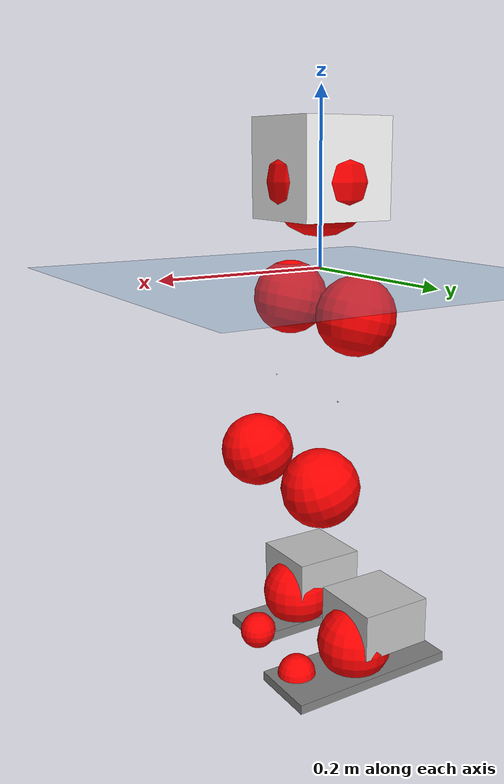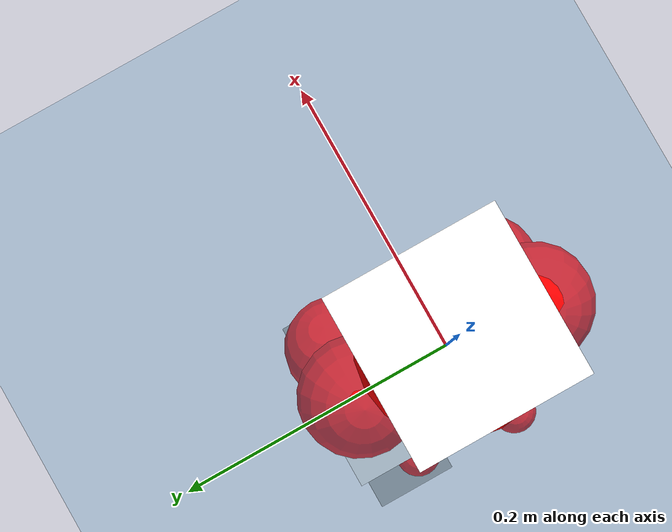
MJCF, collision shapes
<mujoco model="pi_12dof_release_v1">
  <compiler angle="radian" assetdir="assets" balanceinertia="true" inertiafromgeom="false"/>

  <option timestep="0.005" density="1.2" viscosity="2e-05"/>

  <size nkey="1"/>

  <visual>
    <quality shadowsize="8192"/>
    <map shadowclip="0.5"/>
  </visual>

  <default>
    <default class="/">
      <joint armature="0.01" damping="0.01" frictionloss="0.01"/>
      <geom contype="0" conaffinity="0" group="1" solref="-1000 -80"/>
      <site size="0.01 0.005 0.005" group="5"/>
      <general forcelimited="true" biastype="affine" gainprm="20" biasprm="0 -20 -0.5"/>
      <default class="foot">
        <geom size="0.0845 0.036 0.005" type="box" condim="6" group="4" priority="1" friction="0.9 0.2 0.2" solimp="0.015 1 0.005"/>
      </default>
      <default class="reward_collision_sphere">
        <geom group="5" rgba="1 0 0 1"/>
      </default>
    </default>
  </default>

  <asset>
    <texture type="skybox" colorspace="auto" name="//unnamed_texture_0" builtin="gradient" rgb1="0.95 0.95 0.95" rgb2="0.95 0.95 0.95" width="100" height="600"/>
    <texture type="2d" colorspace="auto" name="texplane" builtin="checker" rgb1="0.345 0.575 0.748" rgb2="0.345 0.575 0.748" markrgb="1 1 1" width="512" height="512"/>
    <material name="MatPlane" class="/" texture="texplane" texuniform="true" texrepeat="2 2" specular="0.9"/>
    <mesh name="baselink_1" class="/" file="baselink_1.STL"/>
    <mesh name="r_hip_pitch_link" class="/" file="r_hip_pitch_link.STL"/>
    <mesh name="r_hip_roll_link" class="/" file="r_hip_roll_link.STL"/>
    <mesh name="r_thigh_link" class="/" file="r_thigh_link.STL"/>
    <mesh name="r_calf_link" class="/" file="r_calf_link.STL"/>
    <mesh name="r_ankle_pitch_link" class="/" file="r_ankle_pitch_link.STL"/>
    <mesh name="r_ankle_roll_link" class="/" file="r_ankle_roll_link.STL"/>
    <mesh name="l_hip_pitch_link" class="/" file="l_hip_pitch_link.STL"/>
    <mesh name="l_hip_roll_link" class="/" file="l_hip_roll_link.STL"/>
    <mesh name="l_thigh_link" class="/" file="l_thigh_link.STL"/>
    <mesh name="l_calf_link" class="/" file="l_calf_link.STL"/>
    <mesh name="l_ankle_pitch_link" class="/" file="l_ankle_pitch_link.STL"/>
    <mesh name="l_ankle_roll_link" class="/" file="l_ankle_roll_link.STL"/>
  </asset>

  <worldbody>
    <geom name="floor" class="/" size="100 100 0.125" type="plane" group="0" material="MatPlane"/>
    <light name="toplight_shadow" class="/" pos="0 0 5" dir="0.0990148 0.0990148 -0.990148" type="directional" ambient="0.04 0.04 0.04" diffuse="0.55 0.55 0.55" specular="0.12 0.12 0.12"/>
    <light name="toplight_fill" class="/" pos="0 0 5" dir="0.0990148 0.0990148 -0.990148" type="directional" castshadow="false" ambient="0.04 0.04 0.04" diffuse="0.3 0.3 0.3" specular="0.08 0.08 0.08"/>
    <body name="trunk" pos="0.000198233 -0.000155119 -0.000606585" quat="1 -0.000227395 2.93664e-06 -0.000120812">
      <inertial pos="0.00306109 -0.00223157 0.0557356" quat="0.695183 0.0104998 0.00949137 0.718693" mass="2.96379" diaginertia="0.0141737 0.00412707 0.0210111"/>
      <joint name="//unnamed_joint_0" type="free"/>
      <geom name="//unnamed_geom_1" class="/" type="mesh" density="0" rgba="1 1 1 1" mesh="baselink_1"/>
      <geom name="//unnamed_geom_2" class="/" size="0.0555744 0.0555744 0.0555744" pos="0 0 0.111129" type="box" rgba="1 1 1 1"/>
      <geom name="//unnamed_geom_3" class="reward_collision_sphere" size="0.0611319" pos="0 0 0.097238"/>
      <site name="imu" class="/" pos="0.0131663 -0.00916531 0.0129315" size="0.0111149"/>
      <camera name="track" class="/" pos="0 -1.71778 0" quat="0.707107 0.707107 0 0" mode="trackcom"/>
      <camera name="ego_camera" class="/" pos="0.0814845 0 0.25004" quat="-0.5 -0.5 0.5 0.5"/>
      <body name="r_hip_pitch_link" pos="-0.00235711 -0.020856 -0.043228" quat="0.992283 -0.000449436 -0.123985 -0.00113278">
        <inertial pos="0.00194927 -0.0493289 -0.00240139" quat="-0.021916 0.70066 -0.0307291 0.712497" mass="0.475726" diaginertia="0.00015851 4.32529e-05 0.000424393"/>
        <joint name="r_hip_pitch_joint" class="/" pos="0 0 0" axis="0.0142143 -0.999899 -0.00089793" range="-1.78033 1.23103" armature="0.0101666" damping="0.00612392" frictionloss="0.0110031"/>
        <geom name="//unnamed_geom_4" class="/" type="mesh" density="0" rgba="0.75294 0.75294 0.75294 1" mesh="r_hip_pitch_link"/>
        <geom name="//unnamed_geom_5" class="/" size="0.000555744 0.000555744 0.000555744" type="box" rgba="0.75294 0.75294 0.75294 1"/>
        <body name="r_hip_roll_link" pos="-0.00132782 -0.0487766 0.00244042" quat="1 9.49198e-05 5.57204e-05 3.48196e-05">
          <inertial pos="-0.00184586 0.000238018 -0.0862412" quat="0.70583 -0.0804125 -0.082578 0.698941" mass="0.559897" diaginertia="0.000501002 0.000132138 0.000701454"/>
          <joint name="r_hip_roll_joint" class="/" pos="0 0 0" axis="-1 0.000795536 0.000266285" range="-0.127713 0.481854" armature="0.0100978" damping="0.0385319" frictionloss="0.0120676"/>
          <geom name="//unnamed_geom_6" class="/" type="mesh" density="0" rgba="0.75294 0.75294 0.75294 1" mesh="r_hip_roll_link"/>
          <geom name="//unnamed_geom_7" class="/" size="0.000555744 0.000555744 0.000555744" type="box" rgba="0.75294 0.75294 0.75294 1"/>
          <geom name="//unnamed_geom_8" class="reward_collision_sphere" size="0.0444595"/>
          <body name="r_thigh_link" pos="-0.00272478 0.000942333 -0.0962311" quat="1 0.000852552 -3.58239e-05 -0.000271513">
            <inertial pos="0.000996201 0.000774536 -0.064904" quat="0.737478 0.67537 -0.000855756 0.000735003" mass="0.149182" diaginertia="0.000188696 4.53333e-05 0.000299789"/>
            <joint name="r_thigh_joint" class="/" pos="0 0 0" axis="-0.000312827 0.0010424 -0.999999" range="-0.298298 0.58584" armature="0.0107998" damping="0.00886421" frictionloss="0.0106297"/>
            <geom name="//unnamed_geom_9" class="/" type="mesh" density="0" rgba="0.75294 0.75294 0.75294 1" mesh="r_thigh_link"/>
            <geom name="//unnamed_geom_10" class="/" size="0.000555744 0.000555744 0.000555744" type="box" rgba="0.75294 0.75294 0.75294 1"/>
            <body name="r_calf_link" pos="0.00215779 -0.00400856 -0.0961771" quat="0.947625 -7.05742e-05 0.319386 -0.000199267">
              <inertial pos="0.000212873 0.00149064 -0.0991167" quat="0.999978 -0.00575843 -0.00197484 0.0027649" mass="1.17577" diaginertia="0.00540588 0.00162189 0.000901334"/>
              <joint name="r_calf_joint" class="/" pos="0 0 0" axis="0.0109876 -0.999892 0.0097933" range="-1.69864 0.6494" armature="0.0113581" damping="0.0108715" frictionloss="0.00966423"/>
              <geom name="//unnamed_geom_11" class="/" type="mesh" density="0" rgba="0.75294 0.75294 0.75294 1" mesh="r_calf_link"/>
              <geom name="//unnamed_geom_12" class="/" size="0.000555744 0.000555744 0.000555744" type="box" rgba="0.75294 0.75294 0.75294 1"/>
              <geom name="//unnamed_geom_13" class="reward_collision_sphere" size="0.0444595"/>
              <body name="r_ankle_pitch_link" pos="-0.00321679 0.00175794 -0.194481" quat="0.980068 0.000773952 -0.198656 0.000956329">
                <inertial pos="0.00445821 0.00144003 -2.84444e-05" quat="0.00474071 0.705578 -0.00272699 0.708611" mass="0.225215" diaginertia="0.000456842 9.62926e-05 0.000609576"/>
                <joint name="r_ankle_pitch_joint" class="/" pos="0 0 0" axis="0.000181743 -0.999944 0.0106108" range="-1.32026 0.547895" armature="0.0110557" damping="0" frictionloss="0.0106559"/>
                <geom name="//unnamed_geom_14" class="/" type="mesh" density="0" rgba="0.75294 0.75294 0.75294 1" mesh="r_ankle_pitch_link"/>
                <geom name="//unnamed_geom_15" class="/" size="0.0433481 0.0444595 0.0277872" type="box" rgba="0.75294 0.75294 0.75294 1"/>
                <body name="r_ankle_roll_link" pos="0.0793719 0.00542856 0.00154516" quat="1 -0.000692453 0.000245218 0.000584824">
                  <inertial pos="-0.0282661 -0.00229879 -0.023009" quat="0.556676 0.4424 0.432289 0.554545" mass="0.741289" diaginertia="0.00173394 0.000482337 0.00146669"/>
                  <joint name="r_ankle_roll_joint" class="/" pos="0 0 0" axis="-0.999997 0.00146349 -0.00193405" stiffness="0.00876228" range="-0.123872 0.11329" armature="0.0109754" damping="0.00802331" frictionloss="0.00928697"/>
                  <geom name="//unnamed_geom_16" class="/" type="mesh" density="0" rgba="0.75294 0.75294 0.75294 1" mesh="r_ankle_roll_link"/>
                  <geom name="//unnamed_geom_17" class="/" type="mesh" rgba="0.75294 0.75294 0.75294 1" mesh="r_ankle_roll_link"/>
                  <geom name="right_foot" class="foot" size="0.0805126 0.0337943 0.00582544" pos="-0.0554095 0 -0.061121"/>
                  <geom name="//unnamed_geom_19" class="reward_collision_sphere" size="0.0444595" pos="-0.054323 0 -0.0277823"/>
                  <geom name="//unnamed_geom_20" class="reward_collision_sphere" size="0.0222298" pos="0.0162969 0.0171778 -0.0555646"/>
                  <geom name="//unnamed_geom_21" class="reward_collision_sphere" size="0.0222298" pos="-0.130375 0.0171778 -0.0555646"/>
                  <site name="right_foot" class="foot" pos="-0.0554095 0 -0.061121" size="0.0111149"/>
                </body>
              </body>
            </body>
          </body>
        </body>
      </body>
      <body name="l_hip_pitch_link" pos="-0.00204543 0.0198444 -0.0446517" quat="0.99227 -0.000686117 -0.124098 1.58714e-05">
        <inertial pos="-0.00124966 0.0474156 0.00202328" quat="-0.0539647 0.704989 0.0431537 0.705844" mass="0.56038" diaginertia="0.000200575 4.97714e-05 0.00050523"/>
        <joint name="l_hip_pitch_joint" class="/" pos="0 0 0" axis="0.0026758 0.999995 0.00140916" stiffness="0.00111981" range="-1.25286 1.78651" armature="0.0119789" damping="0.0197877" frictionloss="0.0114847"/>
        <geom name="//unnamed_geom_22" class="/" type="mesh" density="0" rgba="0.75294 0.75294 0.75294 1" mesh="l_hip_pitch_link"/>
        <geom name="//unnamed_geom_23" class="/" size="0.000555744 0.000555744 0.000555744" type="box" rgba="0.75294 0.75294 0.75294 1"/>
        <body name="l_hip_roll_link" pos="0.00187287 0.0496719 4.31448e-05" quat="0.999999 -0.00101814 0.00053835 4.13232e-05">
          <inertial pos="-0.00409495 -0.00079601 -0.0836366" quat="0.70789 -0.0726489 -0.0736224 0.698709" mass="0.522261" diaginertia="0.000479053 0.000123582 0.000665156"/>
          <joint name="l_hip_roll_joint" class="/" pos="0 0 0" axis="-0.999937 -0.0112034 0.00111755" range="-0.571349 0.160516" armature="0.0123869" damping="0.0108737" frictionloss="0.0116269"/>
          <geom name="//unnamed_geom_24" class="/" type="mesh" density="0" rgba="0.75294 0.75294 0.75294 1" mesh="l_hip_roll_link"/>
          <geom name="//unnamed_geom_25" class="/" size="0.000555744 0.000555744 0.000555744" type="box" rgba="0.75294 0.75294 0.75294 1"/>
          <geom name="//unnamed_geom_26" class="reward_collision_sphere" size="0.0444595"/>
          <body name="l_thigh_link" pos="0.000502285 0.00166491 -0.0957503" quat="1 -0.000127386 -0.000207839 -7.44169e-05">
            <inertial pos="-0.000100882 -0.00421981 -0.0666006" quat="0.675271 0.737569 0.000443719 -0.000723725" mass="0.149228" diaginertia="0.000173516 4.10569e-05 0.000269738"/>
            <joint name="l_thigh_joint" class="/" pos="0 0 0" axis="0.00539708 -0.0106046 -0.999929" range="-0.54986 0.316418" armature="0.00981935" damping="0.0049996" frictionloss="0.0107895"/>
            <geom name="//unnamed_geom_27" class="/" type="mesh" density="0" rgba="0.75294 0.75294 0.75294 1" mesh="l_thigh_link"/>
            <geom name="//unnamed_geom_28" class="/" size="0.000555744 0.000555744 0.000555744" type="box" rgba="0.75294 0.75294 0.75294 1"/>
            <body name="l_calf_link" pos="-0.00189142 0.000509022 -0.0983477" quat="0.947529 0.00011234 0.31967 -0.000228307">
              <inertial pos="0.00242443 0.0049866 -0.0992177" quat="0.999737 0.00920399 -0.00528461 0.0203162" mass="1.0665" diaginertia="0.00534566 0.00157022 0.00088583"/>
              <joint name="l_calf_joint" class="/" pos="0 0 0" axis="0.00461077 0.999989 0.00052864" stiffness="0.00926025" range="-0.601785 1.60839" armature="0.0115774" damping="0.0204102" frictionloss="0.0104381"/>
              <geom name="//unnamed_geom_29" class="/" type="mesh" density="0" rgba="0.75294 0.75294 0.75294 1" mesh="l_calf_link"/>
              <geom name="//unnamed_geom_30" class="/" size="0.000555744 0.000555744 0.000555744" type="box" rgba="0.75294 0.75294 0.75294 1"/>
              <geom name="//unnamed_geom_31" class="reward_collision_sphere" size="0.0444595"/>
              <body name="l_ankle_pitch_link" pos="-0.00129792 0.00332628 -0.191223" quat="0.980005 -0.000687603 -0.198974 -0.000244492">
                <inertial pos="0.00498608 -0.00452286 0.00180587" quat="-0.00163481 0.707352 0.00226591 0.706856" mass="0.253503" diaginertia="0.000486858 0.000109486 0.000641611"/>
                <joint name="l_ankle_pitch_joint" class="/" pos="0 0 0" axis="-0.00913485 0.999946 0.00496502" range="-0.48231 1.28338" armature="0.0106601" damping="0.0166778" frictionloss="0.00976992"/>
                <geom name="//unnamed_geom_32" class="/" type="mesh" density="0" rgba="0.75294 0.75294 0.75294 1" mesh="l_ankle_pitch_link"/>
                <geom name="//unnamed_geom_33" class="/" size="0.0433481 0.0444595 0.0277872" type="box" rgba="0.75294 0.75294 0.75294 1"/>
                <body name="l_ankle_roll_link" pos="0.0827483 0.00118376 0.00119631" quat="1 9.33653e-05 -7.54754e-05 8.18646e-05">
                  <inertial pos="-0.0237872 -9.07942e-05 -0.0198602" quat="0.561615 0.44122 0.428878 0.553152" mass="0.708053" diaginertia="0.00171264 0.00045397 0.00135915"/>
                  <joint name="l_ankle_roll_joint" class="/" pos="0 0 0" axis="-0.999826 0.00324983 -0.0183935" range="-0.146172 0.232485" armature="0.0110938" damping="0.0184469" frictionloss="0.0130971"/>
                  <geom name="//unnamed_geom_34" class="/" type="mesh" density="0" rgba="0.75294 0.75294 0.75294 1" mesh="l_ankle_roll_link"/>
                  <geom name="//unnamed_geom_35" class="/" type="mesh" rgba="0.75294 0.75294 0.75294 1" mesh="l_ankle_roll_link"/>
                  <geom name="left_foot" class="foot" size="0.103011 0.0406245 0.00543676" pos="-0.0554095 0 -0.061121"/>
                  <geom name="//unnamed_geom_37" class="reward_collision_sphere" size="0.0444595" pos="-0.054323 0 -0.0277823"/>
                  <geom name="//unnamed_geom_38" class="reward_collision_sphere" size="0.0222298" pos="0.0162969 -0.0171778 -0.0555646"/>
                  <geom name="//unnamed_geom_39" class="reward_collision_sphere" size="0.0222298" pos="-0.130375 -0.0171778 -0.0555646"/>
                  <site name="left_foot" class="foot" pos="-0.0554095 0 -0.061121" size="0.0111149"/>
                </body>
              </body>
            </body>
          </body>
        </body>
      </body>
    </body>
  </worldbody>

  <contact>
    <pair class="/" geom1="floor" geom2="right_foot" name="//unnamed_contact_1"/>
    <pair class="/" geom1="floor" geom2="left_foot" name="//unnamed_contact_0"/>
  </contact>

  <actuator>
    <general name="r_hip_pitch_joint" class="/" joint="r_hip_pitch_joint" forcerange="-22.8695 22.8695" gainprm="20.8813" biasprm="0 -20.8813 -0.593165"/>
    <general name="r_hip_roll_joint" class="/" joint="r_hip_roll_joint" forcerange="-23.6491 23.6491" gainprm="20.8813" biasprm="0 -20.8813 -0.593165"/>
    <general name="r_thigh_joint" class="/" joint="r_thigh_joint" forcerange="-22.1524 22.1524" gainprm="20.8813" biasprm="0 -20.8813 -0.593165"/>
    <general name="r_calf_joint" class="/" joint="r_calf_joint" forcerange="-25.6365 25.6365" gainprm="20.8813" biasprm="0 -20.8813 -0.593165"/>
    <general name="r_ankle_pitch_joint" class="/" joint="r_ankle_pitch_joint" forcerange="-24.397 24.397" gainprm="20.8813" biasprm="0 -20.8813 -0.593165"/>
    <general name="r_ankle_roll_joint" class="/" joint="r_ankle_roll_joint" forcerange="-21.8868 21.8868" gainprm="20.8813" biasprm="0 -20.8813 -0.593165"/>
    <general name="l_hip_pitch_joint" class="/" joint="l_hip_pitch_joint" forcerange="-21.7722 21.7722" gainprm="20.8813" biasprm="0 -20.8813 -0.593165"/>
    <general name="l_hip_roll_joint" class="/" joint="l_hip_roll_joint" forcerange="-26.368 26.368" gainprm="20.8813" biasprm="0 -20.8813 -0.593165"/>
    <general name="l_thigh_joint" class="/" joint="l_thigh_joint" forcerange="-25.5524 25.5524" gainprm="20.8813" biasprm="0 -20.8813 -0.593165"/>
    <general name="l_calf_joint" class="/" joint="l_calf_joint" forcerange="-21.036 21.036" gainprm="20.8813" biasprm="0 -20.8813 -0.593165"/>
    <general name="l_ankle_pitch_joint" class="/" joint="l_ankle_pitch_joint" forcerange="-25.6208 25.6208" gainprm="20.8813" biasprm="0 -20.8813 -0.593165"/>
    <general name="l_ankle_roll_joint" class="/" joint="l_ankle_roll_joint" forcerange="-21.3703 21.3703" gainprm="20.8813" biasprm="0 -20.8813 -0.593165"/>
  </actuator>

  <sensor>
    <gyro site="imu" name="imu_angular_velocity"/>
    <velocimeter site="imu" name="imu_linear_velocity"/>
    <framelinvel objtype="site" objname="left_foot" name="left_foot_global_linear_velocity"/>
    <framelinvel objtype="site" objname="right_foot" name="right_foot_global_linear_velocity"/>
  </sensor>

  <keyframe>
    <key name="home" qpos="0 0 0.291 1 0 0 0 0.4 0 0 -0.8 0.4 0 -0.4 0 0 0.8 -0.4 0"/>
  </keyframe>
</mujoco>
